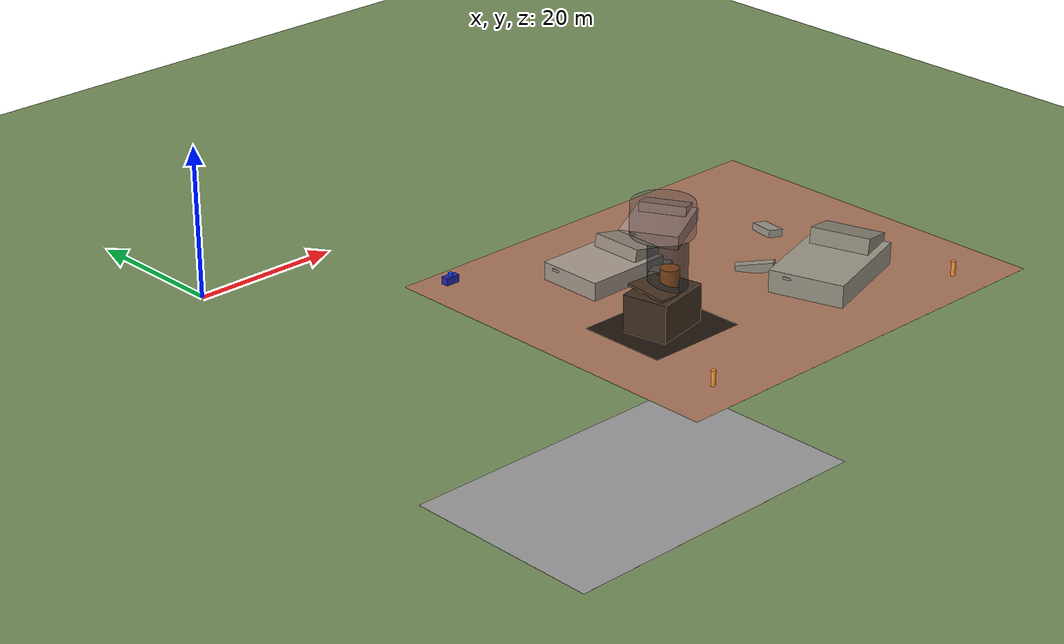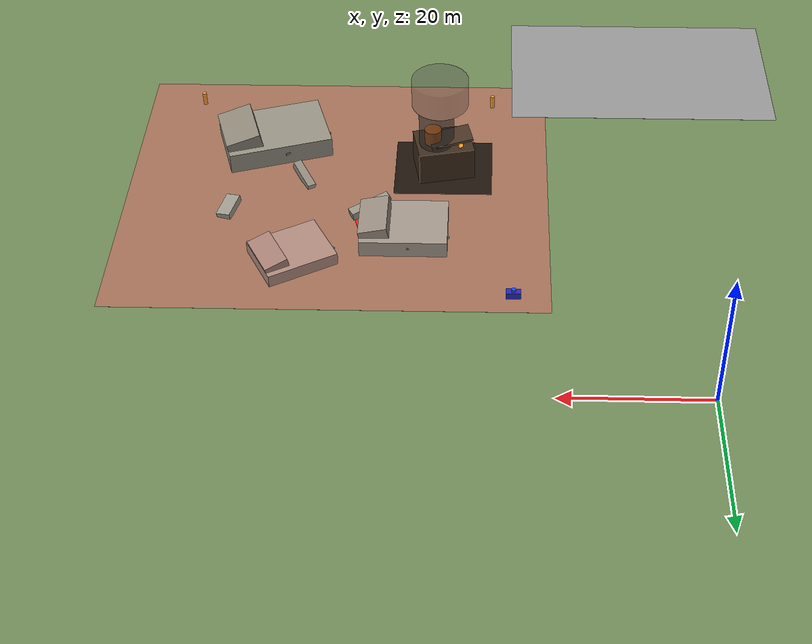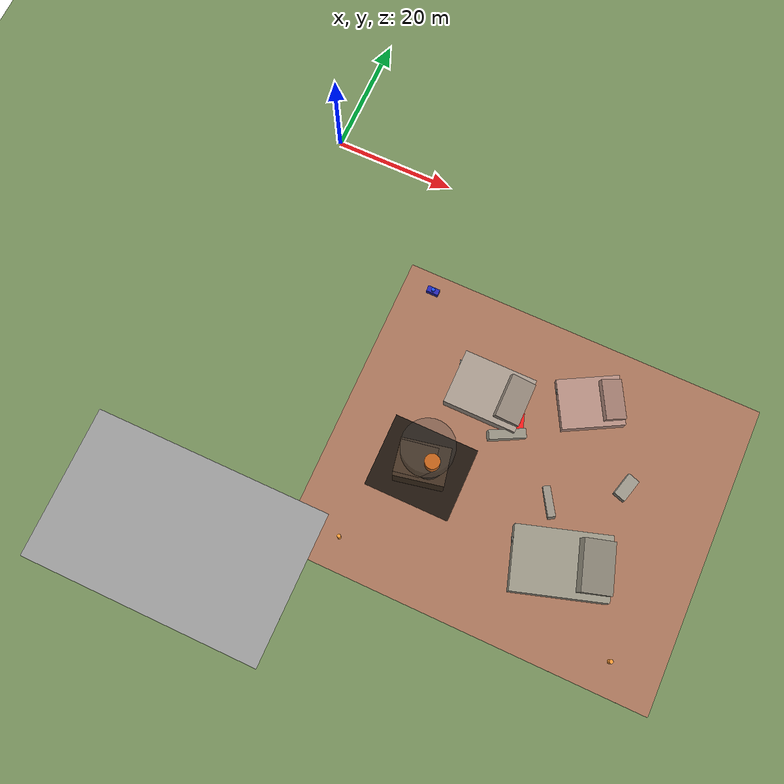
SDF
<sdf version="1.9">
 <world name="urban_rescue">
  <model name="ground">
   <static>true</static>
   <link name="l">
    <collision name="c"><geometry><plane><normal>0 0 1</normal><size>300 300</size></plane></geometry></collision>
    <visual name="v">
     <geometry><plane><normal>0 0 1</normal><size>300 300</size></plane></geometry>
     <material><ambient>0.4 0.5 0.3 1</ambient><diffuse>0.45 0.55 0.35 1</diffuse></material>
    </visual>
   </link>
  </model>
  <model name="zc">
   <static>true</static>
   <pose>50 -40 0.012 0 0 0</pose>
   <link name="l">
    <visual name="v">
     <geometry><box><size>60 50 0.005</size></box></geometry>
     <material>
      <ambient>0.55 0.35 0.25 1</ambient>
      <diffuse>0.65 0.44999999999999996 0.35 1</diffuse>
      <specular>0.1 0.1 0.1 1</specular>
     </material>
    </visual>
   </link>
  </model>
  <model name="ruin1">
   <static>true</static>
   <pose>40 -30 0 0 0 0</pose>
   <link name="b">
    <visual name="base">
     <pose>0 0 1.3333333333333333 0 0 0</pose>
     <geometry><box><size>12 9 2.4</size></box></geometry>
     <material>
      <ambient>0.55 0.5 0.45 1</ambient>
      <diffuse>0.65 0.6 0.55 1</diffuse>
      <specular>0.1 0.1 0.1 1</specular>
     </material>
    </visual>
    <visual name="w1">
     <pose>4.0 0 2.8 0 0.2 0</pose>
     <geometry><box><size>4.0 7.2 2.0</size></box></geometry>
     <material>
      <ambient>0.5 0.45 0.4 1</ambient>
      <diffuse>0.6 0.55 0.5 1</diffuse>
      <specular>0.1 0.1 0.1 1</specular>
     </material>
    </visual>
    <visual name="slab">
     <pose>-3.0 2.25 1.6 0.15 0.1 0.3</pose>
     <geometry><box><size>6.0 3.0 0.3</size></box></geometry>
     <material>
      <ambient>0.45 0.45 0.42 1</ambient>
      <diffuse>0.55 0.55 0.52 1</diffuse>
      <specular>0.1 0.1 0.1 1</specular>
     </material>
    </visual>
    <collision name="c">
     <pose>0 0 1.3333333333333333 0 0 0</pose>
     <geometry><box><size>12 9 2.4</size></box></geometry>
    </collision>
   </link>
  </model>
  <model name="ruin2">
   <static>true</static>
   <pose>60 -50 0 0 0 0.3</pose>
   <link name="b">
    <visual name="base">
     <pose>0 0 1.6666666666666667 0 0 0</pose>
     <geometry><box><size>15 10 3.0</size></box></geometry>
     <material>
      <ambient>0.5 0.48 0.42 1</ambient>
      <diffuse>0.6 0.58 0.52 1</diffuse>
      <specular>0.1 0.1 0.1 1</specular>
     </material>
    </visual>
    <visual name="w1">
     <pose>5.0 0 3.5 0 0.2 0</pose>
     <geometry><box><size>5.0 8.0 2.5</size></box></geometry>
     <material>
      <ambient>0.45 0.43 0.37 1</ambient>
      <diffuse>0.55 0.53 0.47 1</diffuse>
      <specular>0.1 0.1 0.1 1</specular>
     </material>
    </visual>
    <visual name="slab">
     <pose>-3.75 2.5 2.0 0.15 0.1 0.3</pose>
     <geometry><box><size>7.5 3.3333333333333335 0.3</size></box></geometry>
     <material>
      <ambient>0.45 0.45 0.42 1</ambient>
      <diffuse>0.55 0.55 0.52 1</diffuse>
      <specular>0.1 0.1 0.1 1</specular>
     </material>
    </visual>
    <collision name="c">
     <pose>0 0 1.6666666666666667 0 0 0</pose>
     <geometry><box><size>15 10 3.0</size></box></geometry>
    </collision>
   </link>
  </model>
  <model name="ruin3">
   <static>true</static>
   <pose>55 -25 0 0 0 0.5</pose>
   <link name="b">
    <visual name="base">
     <pose>0 0 1.0 0 0 0</pose>
     <geometry><box><size>10 8 1.7999999999999998</size></box></geometry>
     <material>
      <ambient>0.6 0.45 0.4 1</ambient>
      <diffuse>0.7 0.55 0.5 1</diffuse>
      <specular>0.1 0.1 0.1 1</specular>
     </material>
    </visual>
    <visual name="w1">
     <pose>3.3333333333333335 0 2.0999999999999996 0 0.2 0</pose>
     <geometry><box><size>3.3333333333333335 6.4 1.5</size></box></geometry>
     <material>
      <ambient>0.5499999999999999 0.4 0.35000000000000003 1</ambient>
      <diffuse>0.6499999999999999 0.5 0.45000000000000007 1</diffuse>
      <specular>0.1 0.1 0.1 1</specular>
     </material>
    </visual>
    <visual name="slab">
     <pose>-2.5 2.0 1.2000000000000002 0.15 0.1 0.3</pose>
     <geometry><box><size>5.0 2.6666666666666665 0.3</size></box></geometry>
     <material>
      <ambient>0.45 0.45 0.42 1</ambient>
      <diffuse>0.55 0.55 0.52 1</diffuse>
      <specular>0.1 0.1 0.1 1</specular>
     </material>
    </visual>
    <collision name="c">
     <pose>0 0 1.0 0 0 0</pose>
     <geometry><box><size>10 8 1.7999999999999998</size></box></geometry>
    </collision>
   </link>
  </model>
  <model name="deb1">
   <static>true</static>
   <pose>45 -35 0.8 0 0.15 0.5</pose>
   <link name="l">
    <visual name="v">
     <geometry><box><size>6 1.5 1.6</size></box></geometry>
     <material>
      <ambient>0.5 0.48 0.42 1</ambient>
      <diffuse>0.6 0.58 0.52 1</diffuse>
      <specular>0.1 0.1 0.1 1</specular>
     </material>
    </visual>
   </link>
  </model>
  <model name="deb2">
   <static>true</static>
   <pose>55 -42 0.6 0 0.2 2.1</pose>
   <link name="l">
    <visual name="v">
     <geometry><box><size>5 1.2 1.2</size></box></geometry>
     <material>
      <ambient>0.48 0.45 0.4 1</ambient>
      <diffuse>0.58 0.55 0.5 1</diffuse>
      <specular>0.1 0.1 0.1 1</specular>
     </material>
    </visual>
   </link>
  </model>
  <model name="deb3">
   <static>true</static>
   <pose>65 -35 0.5 0.1 0.1 1.3</pose>
   <link name="l">
    <visual name="v">
     <geometry><box><size>4 2 1.0</size></box></geometry>
     <material>
      <ambient>0.52 0.5 0.45 1</ambient>
      <diffuse>0.62 0.6 0.55 1</diffuse>
      <specular>0.1 0.1 0.1 1</specular>
     </material>
    </visual>
   </link>
  </model>
  <model name="mk1">
   <static>true</static>
   <pose>28 -60 1 0 0 0</pose>
   <link name="l">
    <visual name="v">
     <geometry><cylinder><radius>0.3</radius><length>2.0</length></cylinder></geometry>
     <material>
      <ambient>0.9 0.5 0.1 1</ambient>
      <diffuse>1.0 0.6 0.2 1</diffuse>
      <specular>0.1 0.1 0.1 1</specular>
     </material>
    </visual>
   </link>
  </model>
  <model name="mk3">
   <static>true</static>
   <pose>72 -60 1 0 0 0</pose>
   <link name="l">
    <visual name="v">
     <geometry><cylinder><radius>0.3</radius><length>2.0</length></cylinder></geometry>
     <material>
      <ambient>0.9 0.5 0.1 1</ambient>
      <diffuse>1.0 0.6 0.2 1</diffuse>
      <specular>0.1 0.1 0.1 1</specular>
     </material>
    </visual>
   </link>
  </model>
  <model name="ze">
   <static>true</static>
   <pose>5 -70 0.012 0 0 0</pose>
   <link name="l">
    <visual name="v">
     <geometry><box><size>40 25 0.005</size></box></geometry>
     <material>
      <ambient>0.5 0.5 0.5 1</ambient>
      <diffuse>0.6 0.6 0.6 1</diffuse>
      <specular>0.1 0.1 0.1 1</specular>
     </material>
    </visual>
   </link>
  </model>
  <model name="fire_building">
   <static>true</static>
   <pose>35 -45 0 0 0 0.2</pose>
   <link name="body">
    <visual name="building_base">
     <pose>0 0 2.5 0 0 0</pose>
     <geometry><box><size>8 6 5</size></box></geometry>
     <material>
      <ambient>0.15 0.1 0.08 1</ambient>
      <diffuse>0.25 0.18 0.12 1</diffuse>
      <specular>0.05 0.05 0.05 1</specular>
     </material>
    </visual>
    <visual name="collapsed_roof">
     <pose>-1 0 5.5 0.2 0.15 0</pose>
     <geometry><box><size>6 5 0.3</size></box></geometry>
     <material><ambient>0.2 0.15 0.1 1</ambient><diffuse>0.3 0.22 0.15 1</diffuse></material>
    </visual>
    <visual name="flames_main">
     <pose>1.5 0 5.5 0 0 0</pose>
     <geometry><cylinder><radius>1.2</radius><length>3.5</length></cylinder></geometry>
     <material>
      <ambient>1.0 0.35 0.0 1</ambient>
      <diffuse>1.0 0.45 0.05 1</diffuse>
      <emissive>1.0 0.3 0.0 1</emissive>
     </material>
    </visual>
    <visual name="flames_side">
     <pose>-2 1.5 4.0 0 0.1 0</pose>
     <geometry><cylinder><radius>0.7</radius><length>2.0</length></cylinder></geometry>
     <material>
      <ambient>1.0 0.5 0.0 1</ambient>
      <diffuse>1.0 0.6 0.1 1</diffuse>
      <emissive>0.9 0.4 0.0 1</emissive>
     </material>
    </visual>
    <visual name="smoke_column">
     <pose>1.0 0 9 0 0 0</pose>
     <geometry><cylinder><radius>2.5</radius><length>8</length></cylinder></geometry>
     <material><ambient>0.12 0.12 0.12 0.7</ambient><diffuse>0.2 0.2 0.2 0.6</diffuse></material>
    </visual>
    <visual name="smoke_top">
     <pose>0.5 0.5 14 0 0 0</pose>
     <geometry><cylinder><radius>4.0</radius><length>4</length></cylinder></geometry>
     <material><ambient>0.15 0.15 0.15 0.4</ambient><diffuse>0.25 0.25 0.25 0.3</diffuse></material>
    </visual>
    <collision name="c"><pose>0 0 2.5 0 0 0</pose><geometry><box><size>8 6 5</size></box></geometry></collision>
   </link>
  </model>
  <model name="fire_ground">
   <static>true</static>
   <pose>35 -45 0.02 0 0 0</pose>
   <link name="l">
    <visual name="v">
     <geometry><box><size>14 12 0.01</size></box></geometry>
     <material><ambient>0.08 0.06 0.04 1</ambient><diffuse>0.12 0.08 0.05 1</diffuse></material>
    </visual>
   </link>
  </model>
  <model name="sos_signal">
   <static>true</static>
   <pose>45 -33 0.05 0 0 0.3</pose>
   <link name="l">
    <visual name="v">
     <geometry><box><size>4 4 0.05</size></box></geometry>
     <material>
      <ambient>0.95 0.05 0.05 1</ambient>
      <diffuse>1.0 0.1 0.1 1</diffuse>
      <emissive>0.5 0.0 0.0 1</emissive>
     </material>
    </visual>
   </link>
  </model>
  <model name="sos_sign">
   <static>true</static>
   <pose>45 -33 1.5 0 0 0.3</pose>
   <link name="l">
    <visual name="v">
     <geometry><box><size>2.5 0.1 1.5</size></box></geometry>
     <material>
      <ambient>0.95 0.95 0.95 1</ambient>
      <diffuse>1.0 1.0 1.0 1</diffuse>
      <emissive>0.3 0.3 0.3 1</emissive>
     </material>
    </visual>
   </link>
  </model>
  <model name="police_marker">
   <static>true</static>
   <pose>25 -18 0 0 0 0</pose>
   <link name="l">
    <visual name="base">
     <pose>0 0 0.5 0 0 0</pose>
     <geometry><box><size>2 1 1</size></box></geometry>
     <material><ambient>0.1 0.1 0.5 1</ambient><diffuse>0.15 0.15 0.7 1</diffuse></material>
    </visual>
    <visual name="light">
     <pose>0 0 1.2 0 0 0</pose>
     <geometry><cylinder><radius>0.3</radius><length>0.4</length></cylinder></geometry>
     <material>
      <ambient>0.0 0.2 0.9 1</ambient>
      <diffuse>0.1 0.3 1.0 1</diffuse>
      <emissive>0.0 0.2 1.0 1</emissive>
     </material>
    </visual>
   </link>
  </model>
 </world>
</sdf>
